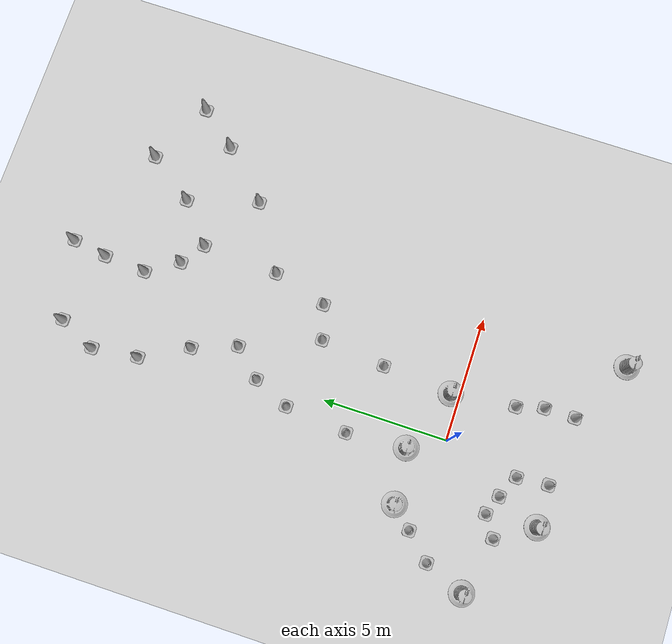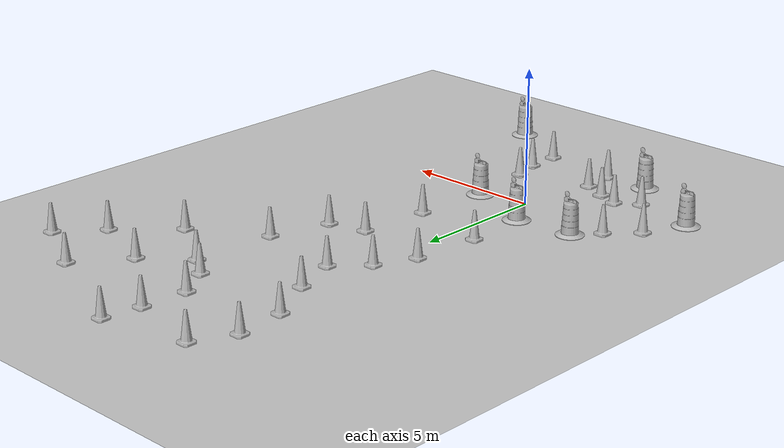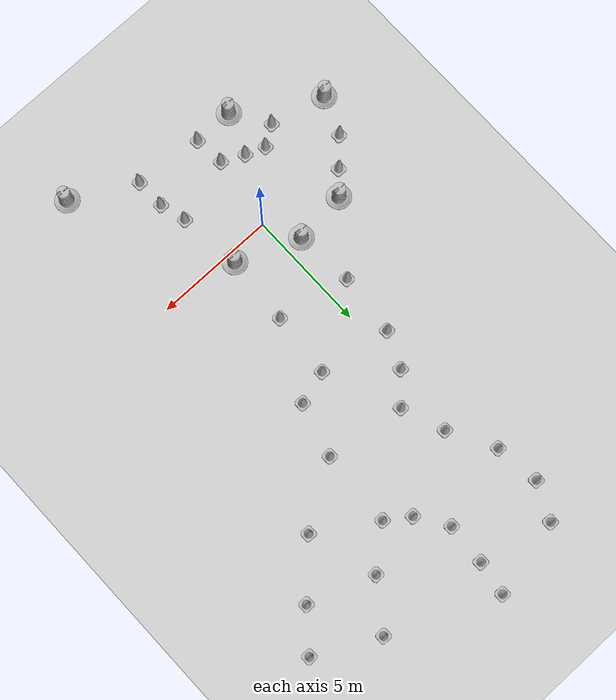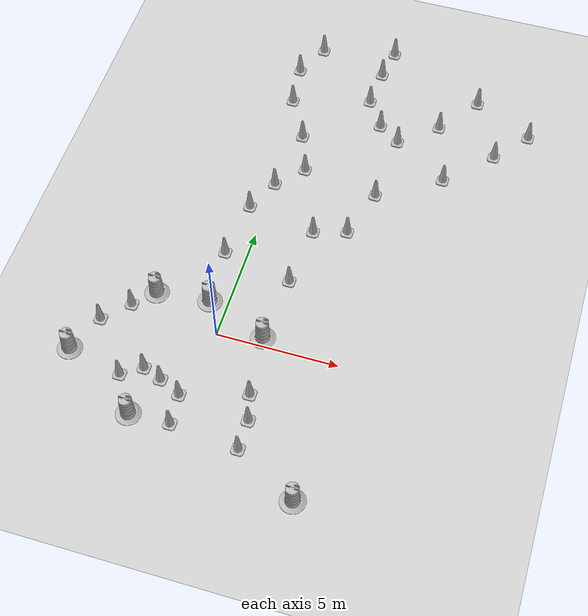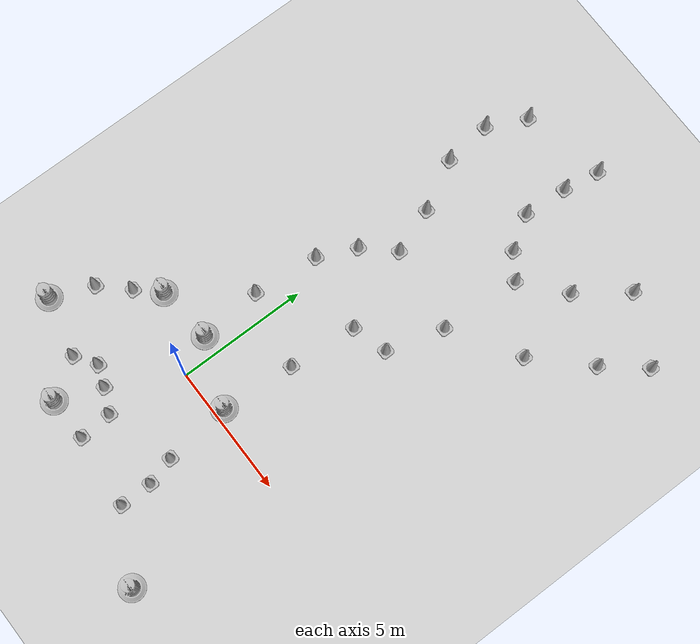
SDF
<sdf version="1.7">
 <world name="default">
  <light name="sun" type="directional">
   <pose>0 0 10 0 -0 0</pose>
   <diffuse>0.8 0.8 0.8 1</diffuse>
   <specular>0.2 0.2 0.2 1</specular>
   <attenuation>
    <range>1000</range>
    <constant>0.9</constant>
    <linear>0.01</linear>
    <quadratic>0.001</quadratic>
   </attenuation>
   <direction>-0.5 0.1 -0.9</direction>
   <spot><inner_angle>0</inner_angle><outer_angle>0</outer_angle><falloff>0</falloff></spot>
  </light>
  <model name="ground_plane">
   <static>1</static>
   <link name="link">
    <collision name="collision">
     <geometry><plane><normal>0 0 1</normal><size>100 100</size></plane></geometry>
     <surface>
      <contact><collide_bitmask>65535</collide_bitmask></contact>
      <friction><ode><mu>100</mu><mu2>50</mu2></ode></friction>
     </surface>
    </collision>
    <visual name="visual">
     <cast_shadows>0</cast_shadows>
     <geometry><plane><normal>0 0 1</normal><size>100 100</size></plane></geometry>
     <material>
      <script><uri>file://media/materials/scripts/gazebo.material</uri><name>Gazebo/Grey</name></script>
     </material>
    </visual>
   </link>
  </model>
  <gravity>0 0 -9.8</gravity>
  <magnetic_field>6e-06 2.3e-05 -4.2e-05</magnetic_field>
  <atmosphere type="adiabatic"/>
  <physics type="ode">
   <max_step_size>0.001</max_step_size>
   <real_time_factor>1</real_time_factor>
   <real_time_update_rate>1000</real_time_update_rate>
  </physics>
  <scene><ambient>0.4 0.4 0.4 1</ambient><background>0.7 0.7 0.7 1</background><shadows>1</shadows></scene>
  <spherical_coordinates>
   <surface_model>EARTH_WGS84</surface_model>
   <latitude_deg>0</latitude_deg>
   <longitude_deg>0</longitude_deg>
   <elevation>0</elevation>
   <heading_deg>0</heading_deg>
  </spherical_coordinates>
  <model name="Construction Barrel">
   <link name="link">
    <inertial>
     <pose>0 0 0.4 0 -0 0</pose>
     <mass>500</mass>
     <inertia><ixx>51.2096</ixx><iyy>51.2096</iyy><izz>25</izz><ixy>0</ixy><ixz>0</ixz><iyz>0</iyz></inertia>
    </inertial>
    <collision name="collision">
     <geometry><mesh><uri>model://construction_barrel/meshes/construction_barrel.dae</uri></mesh></geometry>
    </collision>
    <visual name="visual">
     <geometry><mesh><uri>model://construction_barrel/meshes/construction_barrel.dae</uri></mesh></geometry>
    </visual>
   </link>
   <pose>-0.756439 1.39234 -1e-06 1e-06 -9e-06 -0.000238</pose>
  </model>
  <model name="Construction Barrel_0">
   <link name="link">
    <inertial>
     <pose>0 0 0.4 0 -0 0</pose>
     <mass>500</mass>
     <inertia><ixx>51.2096</ixx><iyy>51.2096</iyy><izz>25</izz><ixy>0</ixy><ixz>0</ixz><iyz>0</iyz></inertia>
    </inertial>
    <collision name="collision">
     <geometry><mesh><uri>model://construction_barrel/meshes/construction_barrel.dae</uri></mesh></geometry>
    </collision>
    <visual name="visual">
     <geometry><mesh><uri>model://construction_barrel/meshes/construction_barrel.dae</uri></mesh></geometry>
    </visual>
   </link>
   <pose>1.80001 0.377246 -1e-06 2e-06 -1e-06 -0.000236</pose>
  </model>
  <model name="Construction Cone">
   <link name="link">
    <collision name="collision">
     <geometry>
      <mesh><scale>10 10 10</scale><uri>model://construction_cone/meshes/construction_cone.dae</uri></mesh>
     </geometry>
    </collision>
    <visual name="visual">
     <geometry>
      <mesh><scale>10 10 10</scale><uri>model://construction_cone/meshes/construction_cone.dae</uri></mesh>
     </geometry>
    </visual>
    <inertial>
     <inertia><ixx>1</ixx><ixy>0</ixy><ixz>0</ixz><iyy>1</iyy><iyz>0</iyz><izz>1</izz></inertia>
     <mass>1</mass>
    </inertial>
   </link>
   <pose>-2.19745 -2.25046 -0 0 -1e-06 0</pose>
  </model>
  <model name="Construction Cone_0">
   <link name="link">
    <collision name="collision">
     <geometry>
      <mesh><scale>10 10 10</scale><uri>model://construction_cone/meshes/construction_cone.dae</uri></mesh>
     </geometry>
    </collision>
    <visual name="visual">
     <geometry>
      <mesh><scale>10 10 10</scale><uri>model://construction_cone/meshes/construction_cone.dae</uri></mesh>
     </geometry>
    </visual>
    <inertial>
     <inertia><ixx>1</ixx><ixy>0</ixy><ixz>0</ixz><iyy>1</iyy><iyz>0</iyz><izz>1</izz></inertia>
     <mass>1</mass>
    </inertial>
   </link>
   <pose>-1.40494 -2.55135 -0 0 -1e-06 0</pose>
  </model>
  <model name="Construction Cone_1">
   <link name="link">
    <collision name="collision">
     <geometry>
      <mesh><scale>10 10 10</scale><uri>model://construction_cone/meshes/construction_cone.dae</uri></mesh>
     </geometry>
    </collision>
    <visual name="visual">
     <geometry>
      <mesh><scale>10 10 10</scale><uri>model://construction_cone/meshes/construction_cone.dae</uri></mesh>
     </geometry>
    </visual>
    <inertial>
     <inertia><ixx>1</ixx><ixy>0</ixy><ixz>0</ixz><iyy>1</iyy><iyz>0</iyz><izz>1</izz></inertia>
     <mass>1</mass>
    </inertial>
   </link>
   <pose>-0.501986 -2.9745 -0 0 -1e-06 0</pose>
  </model>
  <model name="Construction Cone_2">
   <link name="link">
    <collision name="collision">
     <geometry>
      <mesh><scale>10 10 10</scale><uri>model://construction_cone/meshes/construction_cone.dae</uri></mesh>
     </geometry>
    </collision>
    <visual name="visual">
     <geometry>
      <mesh><scale>10 10 10</scale><uri>model://construction_cone/meshes/construction_cone.dae</uri></mesh>
     </geometry>
    </visual>
    <inertial>
     <inertia><ixx>1</ixx><ixy>0</ixy><ixz>0</ixz><iyy>1</iyy><iyz>0</iyz><izz>1</izz></inertia>
     <mass>1</mass>
    </inertial>
   </link>
   <pose>2.09724 -2.18232 -0 0 -1e-06 0</pose>
  </model>
  <model name="Construction Cone_3">
   <link name="link">
    <collision name="collision">
     <geometry>
      <mesh><scale>10 10 10</scale><uri>model://construction_cone/meshes/construction_cone.dae</uri></mesh>
     </geometry>
    </collision>
    <visual name="visual">
     <geometry>
      <mesh><scale>10 10 10</scale><uri>model://construction_cone/meshes/construction_cone.dae</uri></mesh>
     </geometry>
    </visual>
    <inertial>
     <inertia><ixx>1</ixx><ixy>0</ixy><ixz>0</ixz><iyy>1</iyy><iyz>0</iyz><izz>1</izz></inertia>
     <mass>1</mass>
    </inertial>
   </link>
   <pose>-3.69879 0.345038 -0 0 -1e-06 0</pose>
  </model>
  <model name="Construction Cone_4">
   <link name="link">
    <collision name="collision">
     <geometry>
      <mesh><scale>10 10 10</scale><uri>model://construction_cone/meshes/construction_cone.dae</uri></mesh>
     </geometry>
    </collision>
    <visual name="visual">
     <geometry>
      <mesh><scale>10 10 10</scale><uri>model://construction_cone/meshes/construction_cone.dae</uri></mesh>
     </geometry>
    </visual>
    <inertial>
     <inertia><ixx>1</ixx><ixy>0</ixy><ixz>0</ixz><iyy>1</iyy><iyz>0</iyz><izz>1</izz></inertia>
     <mass>1</mass>
    </inertial>
   </link>
   <pose>-0.406438 -4.23374 -0 0 -1e-06 0</pose>
  </model>
  <model name="Construction Cone_5">
   <link name="link">
    <collision name="collision">
     <geometry>
      <mesh><scale>10 10 10</scale><uri>model://construction_cone/meshes/construction_cone.dae</uri></mesh>
     </geometry>
    </collision>
    <visual name="visual">
     <geometry>
      <mesh><scale>10 10 10</scale><uri>model://construction_cone/meshes/construction_cone.dae</uri></mesh>
     </geometry>
    </visual>
    <inertial>
     <inertia><ixx>1</ixx><ixy>0</ixy><ixz>0</ixz><iyy>1</iyy><iyz>0</iyz><izz>1</izz></inertia>
     <mass>1</mass>
    </inertial>
   </link>
   <pose>2.38815 -3.2576 -0 0 -1e-06 0</pose>
  </model>
  <model name="Construction Cone_6">
   <link name="link">
    <collision name="collision">
     <geometry>
      <mesh><scale>10 10 10</scale><uri>model://construction_cone/meshes/construction_cone.dae</uri></mesh>
     </geometry>
    </collision>
    <visual name="visual">
     <geometry>
      <mesh><scale>10 10 10</scale><uri>model://construction_cone/meshes/construction_cone.dae</uri></mesh>
     </geometry>
    </visual>
    <inertial>
     <inertia><ixx>1</ixx><ixy>0</ixy><ixz>0</ixz><iyy>1</iyy><iyz>0</iyz><izz>1</izz></inertia>
     <mass>1</mass>
    </inertial>
   </link>
   <pose>2.39316 -4.49605 -0 0 -1e-06 0</pose>
  </model>
  <model name="Construction Cone_7">
   <link name="link">
    <collision name="collision">
     <geometry>
      <mesh><scale>10 10 10</scale><uri>model://construction_cone/meshes/construction_cone.dae</uri></mesh>
     </geometry>
    </collision>
    <visual name="visual">
     <geometry>
      <mesh><scale>10 10 10</scale><uri>model://construction_cone/meshes/construction_cone.dae</uri></mesh>
     </geometry>
    </visual>
    <inertial>
     <inertia><ixx>1</ixx><ixy>0</ixy><ixz>0</ixz><iyy>1</iyy><iyz>0</iyz><izz>1</izz></inertia>
     <mass>1</mass>
    </inertial>
   </link>
   <pose>-3.00495 -2.78053 -0 0 -1e-06 0</pose>
  </model>
  <model name="Construction Cone_8">
   <link name="link">
    <collision name="collision">
     <geometry>
      <mesh><scale>10 10 10</scale><uri>model://construction_cone/meshes/construction_cone.dae</uri></mesh>
     </geometry>
    </collision>
    <visual name="visual">
     <geometry>
      <mesh><scale>10 10 10</scale><uri>model://construction_cone/meshes/construction_cone.dae</uri></mesh>
     </geometry>
    </visual>
    <inertial>
     <inertia><ixx>1</ixx><ixy>0</ixy><ixz>0</ixz><iyy>1</iyy><iyz>0</iyz><izz>1</izz></inertia>
     <mass>1</mass>
    </inertial>
   </link>
   <pose>-4.64786 -0.646522 -0 0 -1e-06 0</pose>
  </model>
  <model name="Construction Barrel_1">
   <link name="link">
    <inertial>
     <pose>0 0 0.4 0 -0 0</pose>
     <mass>500</mass>
     <inertia><ixx>51.2096</ixx><iyy>51.2096</iyy><izz>25</izz><ixy>0</ixy><ixz>0</ixz><iyz>0</iyz></inertia>
    </inertial>
    <collision name="collision">
     <geometry><mesh><uri>model://construction_barrel/meshes/construction_barrel.dae</uri></mesh></geometry>
    </collision>
    <visual name="visual">
     <geometry><mesh><uri>model://construction_barrel/meshes/construction_barrel.dae</uri></mesh></geometry>
    </visual>
   </link>
   <pose>-5.31096 -2.23699 1e-06 4e-06 2e-06 -0.000228</pose>
  </model>
  <model name="Construction Barrel_2">
   <link name="link">
    <inertial>
     <pose>0 0 0.4 0 -0 0</pose>
     <mass>500</mass>
     <inertia><ixx>51.2096</ixx><iyy>51.2096</iyy><izz>25</izz><ixy>0</ixy><ixz>0</ixz><iyz>0</iyz></inertia>
    </inertial>
    <collision name="collision">
     <geometry><mesh><uri>model://construction_barrel/meshes/construction_barrel.dae</uri></mesh></geometry>
    </collision>
    <visual name="visual">
     <geometry><mesh><uri>model://construction_barrel/meshes/construction_barrel.dae</uri></mesh></geometry>
    </visual>
   </link>
   <pose>-2.07705 -4.26189 -1e-06 2e-06 -1e-06 -0.000223</pose>
  </model>
  <audio><device>default</device></audio>
  <model name="Construction Barrel_3">
   <link name="link">
    <inertial>
     <pose>0 0 0.4 0 -0 0</pose>
     <mass>500</mass>
     <inertia><ixx>51.2096</ixx><iyy>51.2096</iyy><izz>25</izz><ixy>0</ixy><ixz>0</ixz><iyz>0</iyz></inertia>
    </inertial>
    <collision name="collision">
     <geometry><mesh><uri>model://construction_barrel/meshes/construction_barrel.dae</uri></mesh></geometry>
    </collision>
    <visual name="visual">
     <geometry><mesh><uri>model://construction_barrel/meshes/construction_barrel.dae</uri></mesh></geometry>
    </visual>
   </link>
   <pose>-2.94127 1.17391 -1e-06 2e-06 -1e-06 -0.00021</pose>
  </model>
  <model name="Construction Barrel_4">
   <link name="link">
    <inertial>
     <pose>0 0 0.4 0 -0 0</pose>
     <mass>500</mass>
     <inertia><ixx>51.2096</ixx><iyy>51.2096</iyy><izz>25</izz><ixy>0</ixy><ixz>0</ixz><iyz>0</iyz></inertia>
    </inertial>
    <collision name="collision">
     <geometry><mesh><uri>model://construction_barrel/meshes/construction_barrel.dae</uri></mesh></geometry>
    </collision>
    <visual name="visual">
     <geometry><mesh><uri>model://construction_barrel/meshes/construction_barrel.dae</uri></mesh></geometry>
    </visual>
   </link>
   <pose>4.94856 -5.87918 -1e-06 2e-06 -1e-06 -0.000202</pose>
  </model>
  <model name="Construction Cone_9">
   <link name="link">
    <collision name="collision">
     <geometry>
      <mesh><scale>10 10 10</scale><uri>model://construction_cone/meshes/construction_cone.dae</uri></mesh>
     </geometry>
    </collision>
    <visual name="visual">
     <geometry>
      <mesh><scale>10 10 10</scale><uri>model://construction_cone/meshes/construction_cone.dae</uri></mesh>
     </geometry>
    </visual>
    <inertial>
     <inertia><ixx>1</ixx><ixy>0</ixy><ixz>0</ixz><iyy>1</iyy><iyz>0</iyz><izz>1</izz></inertia>
     <mass>1</mass>
    </inertial>
   </link>
   <pose>2.0192 3.19337 -0 0 -1e-06 0</pose>
  </model>
  <model name="Construction Cone_10">
   <link name="link">
    <collision name="collision">
     <geometry>
      <mesh><scale>10 10 10</scale><uri>model://construction_cone/meshes/construction_cone.dae</uri></mesh>
     </geometry>
    </collision>
    <visual name="visual">
     <geometry>
      <mesh><scale>10 10 10</scale><uri>model://construction_cone/meshes/construction_cone.dae</uri></mesh>
     </geometry>
    </visual>
    <inertial>
     <inertia><ixx>1</ixx><ixy>0</ixy><ixz>0</ixz><iyy>1</iyy><iyz>0</iyz><izz>1</izz></inertia>
     <mass>1</mass>
    </inertial>
   </link>
   <pose>2.24897 5.81887 -0 0 -1e-06 0</pose>
  </model>
  <model name="Construction Cone_11">
   <link name="link">
    <collision name="collision">
     <geometry>
      <mesh><scale>10 10 10</scale><uri>model://construction_cone/meshes/construction_cone.dae</uri></mesh>
     </geometry>
    </collision>
    <visual name="visual">
     <geometry>
      <mesh><scale>10 10 10</scale><uri>model://construction_cone/meshes/construction_cone.dae</uri></mesh>
     </geometry>
    </visual>
    <inertial>
     <inertia><ixx>1</ixx><ixy>0</ixy><ixz>0</ixz><iyy>1</iyy><iyz>0</iyz><izz>1</izz></inertia>
     <mass>1</mass>
    </inertial>
   </link>
   <pose>4.23477 8.40705 -0 0 -1e-06 0</pose>
  </model>
  <model name="Construction Cone_12">
   <link name="link">
    <collision name="collision">
     <geometry>
      <mesh><scale>10 10 10</scale><uri>model://construction_cone/meshes/construction_cone.dae</uri></mesh>
     </geometry>
    </collision>
    <visual name="visual">
     <geometry>
      <mesh><scale>10 10 10</scale><uri>model://construction_cone/meshes/construction_cone.dae</uri></mesh>
     </geometry>
    </visual>
    <inertial>
     <inertia><ixx>1</ixx><ixy>0</ixy><ixz>0</ixz><iyy>1</iyy><iyz>0</iyz><izz>1</izz></inertia>
     <mass>1</mass>
    </inertial>
   </link>
   <pose>-0.926939 3.80093 -0 0 -1e-06 0</pose>
  </model>
  <model name="Construction Cone_13">
   <link name="link">
    <collision name="collision">
     <geometry>
      <mesh><scale>10 10 10</scale><uri>model://construction_cone/meshes/construction_cone.dae</uri></mesh>
     </geometry>
    </collision>
    <visual name="visual">
     <geometry>
      <mesh><scale>10 10 10</scale><uri>model://construction_cone/meshes/construction_cone.dae</uri></mesh>
     </geometry>
    </visual>
    <inertial>
     <inertia><ixx>1</ixx><ixy>0</ixy><ixz>0</ixz><iyy>1</iyy><iyz>0</iyz><izz>1</izz></inertia>
     <mass>1</mass>
    </inertial>
   </link>
   <pose>-0.677228 6.32854 -0 0 -1e-06 0</pose>
  </model>
  <model name="Construction Cone_14">
   <link name="link">
    <collision name="collision">
     <geometry>
      <mesh><scale>10 10 10</scale><uri>model://construction_cone/meshes/construction_cone.dae</uri></mesh>
     </geometry>
    </collision>
    <visual name="visual">
     <geometry>
      <mesh><scale>10 10 10</scale><uri>model://construction_cone/meshes/construction_cone.dae</uri></mesh>
     </geometry>
    </visual>
    <inertial>
     <inertia><ixx>1</ixx><ixy>0</ixy><ixz>0</ixz><iyy>1</iyy><iyz>0</iyz><izz>1</izz></inertia>
     <mass>1</mass>
    </inertial>
   </link>
   <pose>0.984945 8.87544 -0 0 -1e-06 0</pose>
  </model>
  <model name="Construction Cone_15">
   <link name="link">
    <collision name="collision">
     <geometry>
      <mesh><scale>10 10 10</scale><uri>model://construction_cone/meshes/construction_cone.dae</uri></mesh>
     </geometry>
    </collision>
    <visual name="visual">
     <geometry>
      <mesh><scale>10 10 10</scale><uri>model://construction_cone/meshes/construction_cone.dae</uri></mesh>
     </geometry>
    </visual>
    <inertial>
     <inertia><ixx>1</ixx><ixy>0</ixy><ixz>0</ixz><iyy>1</iyy><iyz>0</iyz><izz>1</izz></inertia>
     <mass>1</mass>
    </inertial>
   </link>
   <pose>4.41614 11.5124 -0 0 -1e-06 0</pose>
  </model>
  <model name="Construction Cone_16">
   <link name="link">
    <collision name="collision">
     <geometry>
      <mesh><scale>10 10 10</scale><uri>model://construction_cone/meshes/construction_cone.dae</uri></mesh>
     </geometry>
    </collision>
    <visual name="visual">
     <geometry>
      <mesh><scale>10 10 10</scale><uri>model://construction_cone/meshes/construction_cone.dae</uri></mesh>
     </geometry>
    </visual>
    <inertial>
     <inertia><ixx>1</ixx><ixy>0</ixy><ixz>0</ixz><iyy>1</iyy><iyz>0</iyz><izz>1</izz></inertia>
     <mass>1</mass>
    </inertial>
   </link>
   <pose>6.79769 10.0081 -0 0 -1e-06 0</pose>
  </model>
  <model name="Construction Cone_17">
   <link name="link">
    <collision name="collision">
     <geometry>
      <mesh><scale>10 10 10</scale><uri>model://construction_cone/meshes/construction_cone.dae</uri></mesh>
     </geometry>
    </collision>
    <visual name="visual">
     <geometry>
      <mesh><scale>10 10 10</scale><uri>model://construction_cone/meshes/construction_cone.dae</uri></mesh>
     </geometry>
    </visual>
    <inertial>
     <inertia><ixx>1</ixx><ixy>0</ixy><ixz>0</ixz><iyy>1</iyy><iyz>0</iyz><izz>1</izz></inertia>
     <mass>1</mass>
    </inertial>
   </link>
   <pose>0.346853 10.6234 -0 0 -1e-06 0</pose>
  </model>
  <model name="Construction Cone_18">
   <link name="link">
    <collision name="collision">
     <geometry>
      <mesh><scale>10 10 10</scale><uri>model://construction_cone/meshes/construction_cone.dae</uri></mesh>
     </geometry>
    </collision>
    <visual name="visual">
     <geometry>
      <mesh><scale>10 10 10</scale><uri>model://construction_cone/meshes/construction_cone.dae</uri></mesh>
     </geometry>
    </visual>
    <inertial>
     <inertia><ixx>1</ixx><ixy>0</ixy><ixz>0</ixz><iyy>1</iyy><iyz>0</iyz><izz>1</izz></inertia>
     <mass>1</mass>
    </inertial>
   </link>
   <pose>-0.662556 12.4865 -0 0 -1e-06 0</pose>
  </model>
  <model name="Construction Cone_19">
   <link name="link">
    <collision name="collision">
     <geometry>
      <mesh><scale>10 10 10</scale><uri>model://construction_cone/meshes/construction_cone.dae</uri></mesh>
     </geometry>
    </collision>
    <visual name="visual">
     <geometry>
      <mesh><scale>10 10 10</scale><uri>model://construction_cone/meshes/construction_cone.dae</uri></mesh>
     </geometry>
    </visual>
    <inertial>
     <inertia><ixx>1</ixx><ixy>0</ixy><ixz>0</ixz><iyy>1</iyy><iyz>0</iyz><izz>1</izz></inertia>
     <mass>1</mass>
    </inertial>
   </link>
   <pose>-0.880654 14.3331 -0 0 -1e-06 0</pose>
  </model>
  <model name="Construction Cone_20">
   <link name="link">
    <collision name="collision">
     <geometry>
      <mesh><scale>10 10 10</scale><uri>model://construction_cone/meshes/construction_cone.dae</uri></mesh>
     </geometry>
    </collision>
    <visual name="visual">
     <geometry>
      <mesh><scale>10 10 10</scale><uri>model://construction_cone/meshes/construction_cone.dae</uri></mesh>
     </geometry>
    </visual>
    <inertial>
     <inertia><ixx>1</ixx><ixy>0</ixy><ixz>0</ixz><iyy>1</iyy><iyz>0</iyz><izz>1</izz></inertia>
     <mass>1</mass>
    </inertial>
   </link>
   <pose>2.66565 13.4294 -0 0 -1e-06 0</pose>
  </model>
  <model name="Construction Cone_21">
   <link name="link">
    <collision name="collision">
     <geometry>
      <mesh><scale>10 10 10</scale><uri>model://construction_cone/meshes/construction_cone.dae</uri></mesh>
     </geometry>
    </collision>
    <visual name="visual">
     <geometry>
      <mesh><scale>10 10 10</scale><uri>model://construction_cone/meshes/construction_cone.dae</uri></mesh>
     </geometry>
    </visual>
    <inertial>
     <inertia><ixx>1</ixx><ixy>0</ixy><ixz>0</ixz><iyy>1</iyy><iyz>0</iyz><izz>1</izz></inertia>
     <mass>1</mass>
    </inertial>
   </link>
   <pose>2.77877 15.1342 -0 0 -1e-06 0</pose>
  </model>
  <model name="Construction Cone_22">
   <link name="link">
    <collision name="collision">
     <geometry>
      <mesh><scale>10 10 10</scale><uri>model://construction_cone/meshes/construction_cone.dae</uri></mesh>
     </geometry>
    </collision>
    <visual name="visual">
     <geometry>
      <mesh><scale>10 10 10</scale><uri>model://construction_cone/meshes/construction_cone.dae</uri></mesh>
     </geometry>
    </visual>
    <inertial>
     <inertia><ixx>1</ixx><ixy>0</ixy><ixz>0</ixz><iyy>1</iyy><iyz>0</iyz><izz>1</izz></inertia>
     <mass>1</mass>
    </inertial>
   </link>
   <pose>3.00505 16.534 -0 0 -1e-06 0</pose>
  </model>
  <model name="Construction Cone_23">
   <link name="link">
    <collision name="collision">
     <geometry>
      <mesh><scale>10 10 10</scale><uri>model://construction_cone/meshes/construction_cone.dae</uri></mesh>
     </geometry>
    </collision>
    <visual name="visual">
     <geometry>
      <mesh><scale>10 10 10</scale><uri>model://construction_cone/meshes/construction_cone.dae</uri></mesh>
     </geometry>
    </visual>
    <inertial>
     <inertia><ixx>1</ixx><ixy>0</ixy><ixz>0</ixz><iyy>1</iyy><iyz>0</iyz><izz>1</izz></inertia>
     <mass>1</mass>
    </inertial>
   </link>
   <pose>-0.177622 15.8214 -0 0 -1e-06 0</pose>
  </model>
  <model name="Construction Cone_24">
   <link name="link">
    <collision name="collision">
     <geometry>
      <mesh><scale>10 10 10</scale><uri>model://construction_cone/meshes/construction_cone.dae</uri></mesh>
     </geometry>
    </collision>
    <visual name="visual">
     <geometry>
      <mesh><scale>10 10 10</scale><uri>model://construction_cone/meshes/construction_cone.dae</uri></mesh>
     </geometry>
    </visual>
    <inertial>
     <inertia><ixx>1</ixx><ixy>0</ixy><ixz>0</ixz><iyy>1</iyy><iyz>0</iyz><izz>1</izz></inertia>
     <mass>1</mass>
    </inertial>
   </link>
   <pose>8.63049 11.8804 -0 0 -1e-06 0</pose>
  </model>
  <model name="Construction Cone_25">
   <link name="link">
    <collision name="collision">
     <geometry>
      <mesh><scale>10 10 10</scale><uri>model://construction_cone/meshes/construction_cone.dae</uri></mesh>
     </geometry>
    </collision>
    <visual name="visual">
     <geometry>
      <mesh><scale>10 10 10</scale><uri>model://construction_cone/meshes/construction_cone.dae</uri></mesh>
     </geometry>
    </visual>
    <inertial>
     <inertia><ixx>1</ixx><ixy>0</ixy><ixz>0</ixz><iyy>1</iyy><iyz>0</iyz><izz>1</izz></inertia>
     <mass>1</mass>
    </inertial>
   </link>
   <pose>5.97495 12.8241 -0 0 -1e-06 0</pose>
  </model>
  <model name="Construction Cone_26">
   <link name="link">
    <collision name="collision">
     <geometry>
      <mesh><scale>10 10 10</scale><uri>model://construction_cone/meshes/construction_cone.dae</uri></mesh>
     </geometry>
    </collision>
    <visual name="visual">
     <geometry>
      <mesh><scale>10 10 10</scale><uri>model://construction_cone/meshes/construction_cone.dae</uri></mesh>
     </geometry>
    </visual>
    <inertial>
     <inertia><ixx>1</ixx><ixy>0</ixy><ixz>0</ixz><iyy>1</iyy><iyz>0</iyz><izz>1</izz></inertia>
     <mass>1</mass>
    </inertial>
   </link>
   <pose>7.30896 14.6613 -0 0 -1e-06 0</pose>
  </model>
  <model name="Construction Cone_27">
   <link name="link">
    <collision name="collision">
     <geometry>
      <mesh><scale>10 10 10</scale><uri>model://construction_cone/meshes/construction_cone.dae</uri></mesh>
     </geometry>
    </collision>
    <visual name="visual">
     <geometry>
      <mesh><scale>10 10 10</scale><uri>model://construction_cone/meshes/construction_cone.dae</uri></mesh>
     </geometry>
    </visual>
    <inertial>
     <inertia><ixx>1</ixx><ixy>0</ixy><ixz>0</ixz><iyy>1</iyy><iyz>0</iyz><izz>1</izz></inertia>
     <mass>1</mass>
    </inertial>
   </link>
   <pose>9.8464 13.3601 -0 0 -1e-06 0</pose>
  </model>
  <model name="Construction Cone_28">
   <link name="link">
    <collision name="collision">
     <geometry>
      <mesh><scale>10 10 10</scale><uri>model://construction_cone/meshes/construction_cone.dae</uri></mesh>
     </geometry>
    </collision>
    <visual name="visual">
     <geometry>
      <mesh><scale>10 10 10</scale><uri>model://construction_cone/meshes/construction_cone.dae</uri></mesh>
     </geometry>
    </visual>
    <inertial>
     <inertia><ixx>1</ixx><ixy>0</ixy><ixz>0</ixz><iyy>1</iyy><iyz>0</iyz><izz>1</izz></inertia>
     <mass>1</mass>
    </inertial>
   </link>
   <pose>3.47138 12.174 -0 0 -1e-06 0</pose>
  </model>
  <model name="Construction Cone_29">
   <link name="link">
    <collision name="collision">
     <geometry>
      <mesh><scale>10 10 10</scale><uri>model://construction_cone/meshes/construction_cone.dae</uri></mesh>
     </geometry>
    </collision>
    <visual name="visual">
     <geometry>
      <mesh><scale>10 10 10</scale><uri>model://construction_cone/meshes/construction_cone.dae</uri></mesh>
     </geometry>
    </visual>
    <inertial>
     <inertia><ixx>1</ixx><ixy>0</ixy><ixz>0</ixz><iyy>1</iyy><iyz>0</iyz><izz>1</izz></inertia>
     <mass>1</mass>
    </inertial>
   </link>
   <pose>3.61271 6.21623 -0 0 -1e-06 0</pose>
  </model>
  <model name="Construction Cone_30">
   <link name="link">
    <collision name="collision">
     <geometry>
      <mesh><scale>10 10 10</scale><uri>model://construction_cone/meshes/construction_cone.dae</uri></mesh>
     </geometry>
    </collision>
    <visual name="visual">
     <geometry>
      <mesh><scale>10 10 10</scale><uri>model://construction_cone/meshes/construction_cone.dae</uri></mesh>
     </geometry>
    </visual>
    <inertial>
     <inertia><ixx>1</ixx><ixy>0</ixy><ixz>0</ixz><iyy>1</iyy><iyz>0</iyz><izz>1</izz></inertia>
     <mass>1</mass>
    </inertial>
   </link>
   <pose>-0.032454 7.7747 -0 0 -1e-06 0</pose>
  </model>
 </world>
</sdf>
